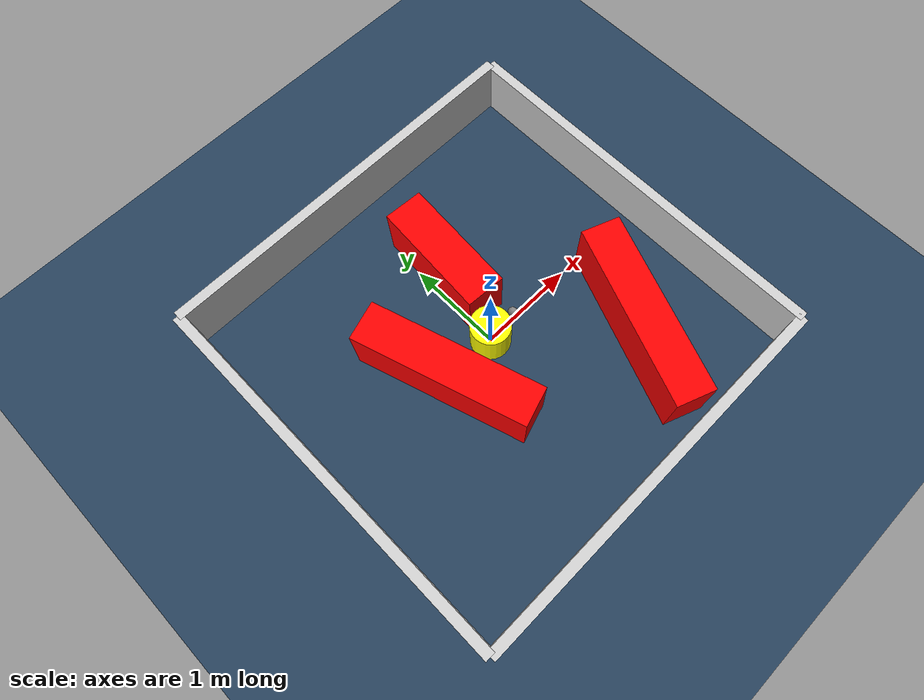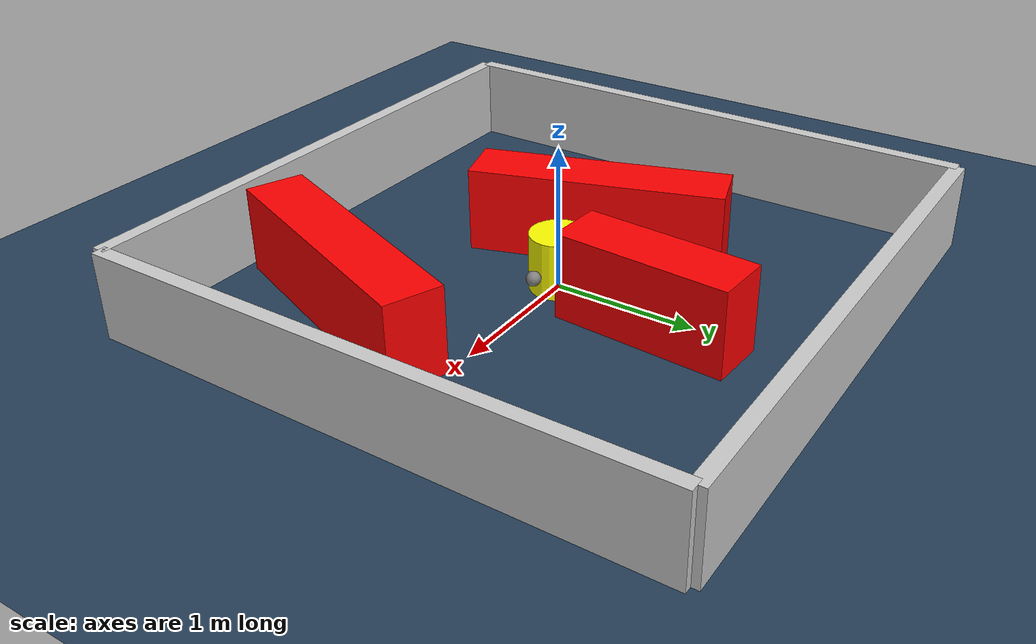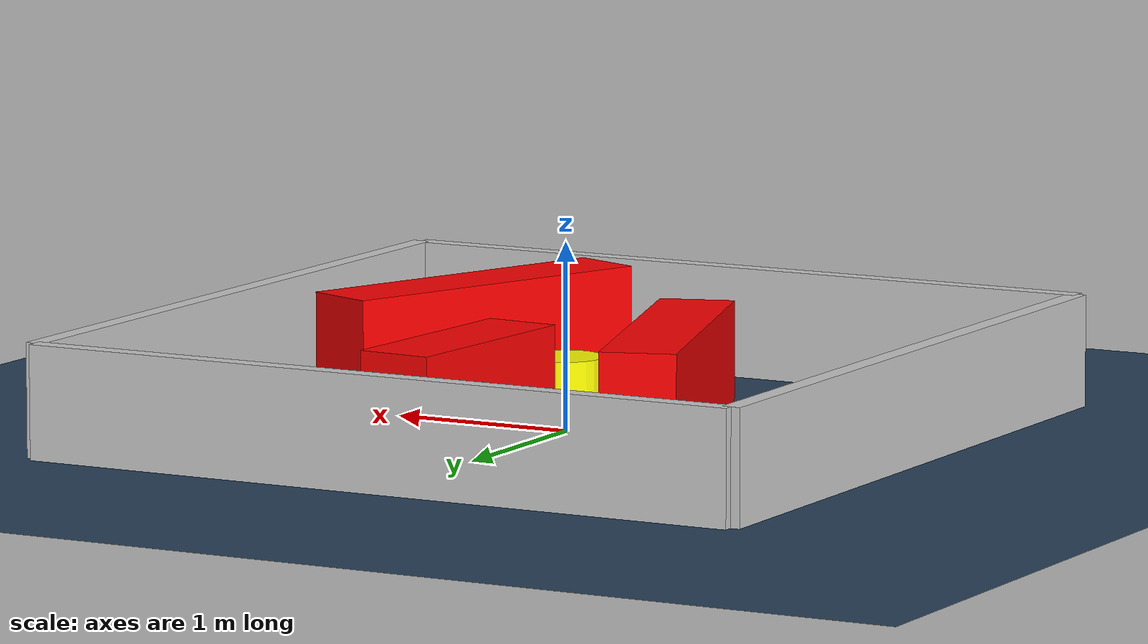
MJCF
<?xml version="1.0" ?>
<mujoco model="generated_environment">
  <option timestep="0.01" integrator="RK4" cone="elliptic"/>
  <default>
    <geom density="1"/>
  </default>
  <asset>
    <texture builtin="gradient" height="3072" rgb1="0.3 0.5 0.7" rgb2="0 0 0" type="skybox" width="512"/>
    <texture builtin="checker" height="300" mark="edge" markrgb="0.8 0.8 0.8" name="groundplane" rgb1="0.2 0.3 0.4" rgb2="0.1 0.2 0.3" type="2d" width="300"/>
    <material name="groundplane" reflectance="0.2" texrepeat="5 5" texture="groundplane" texuniform="true"/>
    <material name="robot" rgba="0.0 1.0 0.0 1"/>
  </asset>
  <worldbody>
    <light dir="0 0 -1" directional="true" pos="0 0 1.5"/>
    <geom condim="4" friction="1.0 0.005 0.001" material="groundplane" name="floor" size="0 0 0.05" type="plane"/>
    <body name="walls">
      <geom name="wall_1" condim="4" pos="-2.0 0.0 0.3" rgba="0.800000011920929 0.800000011920929 0.800000011920929 1.0" size="0.05 2.0 0.3" type="box"/>
      <geom name="wall_2" condim="4" pos="2.0 0.0 0.3" rgba="0.800000011920929 0.800000011920929 0.800000011920929 1.0" size="0.05 2.0 0.3" type="box"/>
      <geom name="wall_3" condim="4" pos="0.0 -2.0 0.3" rgba="0.800000011920929 0.800000011920929 0.800000011920929 1.0" size="2.0 0.05 0.3" type="box"/>
      <geom name="wall_4" condim="4" pos="0.0 2.0 0.3" rgba="0.800000011920929 0.800000011920929 0.800000011920929 1.0" size="2.0 0.05 0.3" type="box"/>
    </body>
    <body name="robot">
      <joint name="joint_x" type="slide" pos="0 0 0" axis="1 0 0"/>
      <joint name="joint_y" type="slide" pos="0 0 0" axis="0 1 0"/>
      <geom name="robot" type="sphere" pos="0.3 0.0 0.2" size="0.05" mass="5." friction="1.0 0.005 0.0001" condim="4" rgba="0.5 0.5 0.5 1.0"/>
      <site name="sensor_ball"/>
    </body>
    <body name="obstacle_movable_1">
      <geom name="obstacle_movable_1" condim="4" pos="0.0 0.0 0.2" euler="0 0 0.0" friction="1.0 0.005 0.001" rgba="1.0 1.0 0.0 1.0" size="0.2 0.2 0.0" type="cylinder" mass="0.1"/>
      <joint type="free"/>
    </body>
    <body name="obstacle_2_static">
      <geom name="obstacle_2_static" condim="4" pos="0.1855094105952746 0.8086848908489321 0.3" euler="0 0 86.22661082854236" friction="1.0 0.005 0.001" rgba="1 0 0 1" size="0.6059835629826631 0.2 0.3" type="box"/>
    </body>
    <body name="obstacle_3_static">
      <geom name="obstacle_3_static" condim="4" pos="1.0653698932521536 -0.9369084447172239 0.3" euler="0 0 248.83930907322315" friction="1.0 0.005 0.001" rgba="1 0 0 1" size="0.9343127808125105 0.2 0.3" type="box"/>
    </body>
    <body name="obstacle_4_static">
      <geom name="obstacle_4_static" condim="4" pos="-0.5806031175522474 -0.036072748275159494 0.3" euler="0 0 287.73784547959144" friction="1.0 0.005 0.001" rgba="1 0 0 1" size="0.8846366181020446 0.2 0.3" type="box"/>
    </body>
  </worldbody>
  <actuator>
    <motor name="actuator_x" joint="joint_x" gear="1" ctrlrange="-1 1"/>
    <motor name="actuator_y" joint="joint_y" gear="1" ctrlrange="-1 1"/>
  </actuator>
</mujoco>
